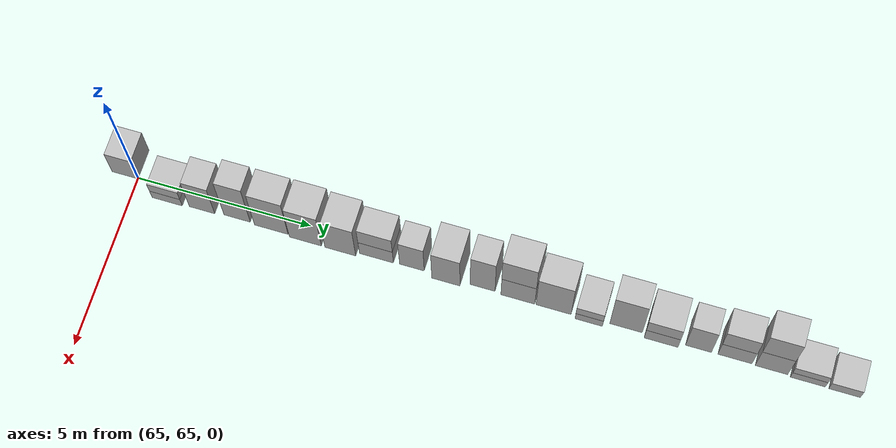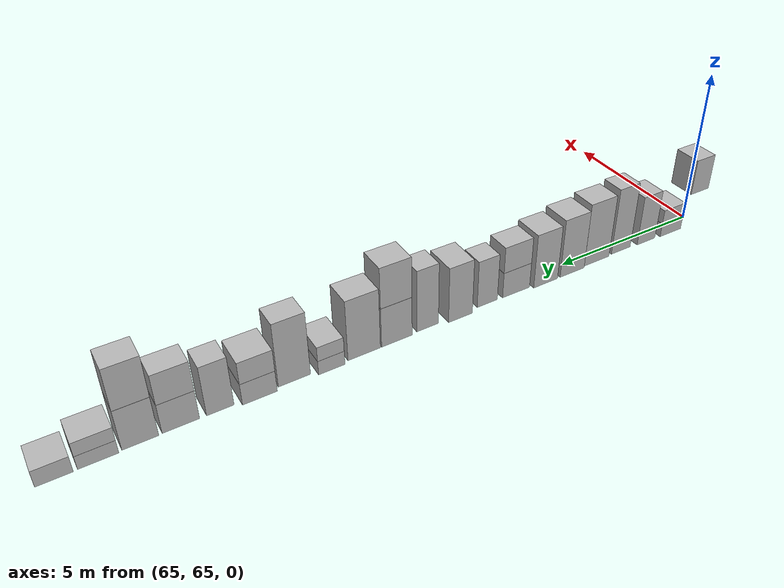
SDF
<sdf version="1.5">
 <world name="default">
  <model name="ground_plane">
   <static>true</static>
   <link name="link">
    <collision name="collision">
     <geometry><plane><normal>0 0 1</normal><size>250 250</size></plane></geometry>
     <surface><friction><ode><mu>1</mu><mu2>1</mu2></ode></friction></surface>
    </collision>
    <visual name="grass">
     <cast_shadows>false</cast_shadows>
     <geometry><mesh><uri>file://grass_plane/meshes/grass_plane.dae</uri></mesh></geometry>
    </visual>
   </link>
  </model>
  <model name="Cardboard_box_top_660">
   <link name="link_0">
    <pose>65 65 1.21451829969 0 0 0</pose>
    <inertial>
     <mass>1</mass>
     <inertia>
      <ixx>0.166667</ixx>
      <ixy>0</ixy>
      <ixz>0</ixz>
      <iyy>0.166667</iyy>
      <iyz>0</iyz>
      <izz>0.166667</izz>
     </inertia>
    </inertial>
    <collision name="collision">
     <geometry>
      <mesh>
       <uri>model://Cardboard_box/meshes/cardboard_box.dae</uri>
       <scale>2.16586801178 1.87002822027 3.03629574922</scale>
      </mesh>
     </geometry>
    </collision>
    <visual name="visual">
     <geometry>
      <mesh>
       <uri>model://Cardboard_box/meshes/cardboard_box.dae</uri>
       <scale>2.16586801178 1.87002822027 3.03629574922</scale>
      </mesh>
     </geometry>
    </visual>
   </link>
   <static>1</static>
  </model>
  <model name="Cardboard_box_661">
   <link name="link_0">
    <pose>65 66 0 0 0 0</pose>
    <inertial>
     <mass>1</mass>
     <inertia>
      <ixx>0.166667</ixx>
      <ixy>0</ixy>
      <ixz>0</ixz>
      <iyy>0.166667</iyy>
      <iyz>0</iyz>
      <izz>0.166667</izz>
     </inertia>
    </inertial>
    <collision name="collision">
     <geometry>
      <mesh>
       <uri>model://Cardboard_box/meshes/cardboard_box.dae</uri>
       <scale>2.2149491193 2.21294872091 1.22089232817</scale>
      </mesh>
     </geometry>
    </collision>
    <visual name="visual">
     <geometry>
      <mesh>
       <uri>model://Cardboard_box/meshes/cardboard_box.dae</uri>
       <scale>2.2149491193 2.21294872091 1.22089232817</scale>
      </mesh>
     </geometry>
    </visual>
   </link>
   <static>1</static>
  </model>
  <model name="Cardboard_box_top_661">
   <link name="link_0">
    <pose>65 66 0.48835693127 0 0 0</pose>
    <inertial>
     <mass>1</mass>
     <inertia>
      <ixx>0.166667</ixx>
      <ixy>0</ixy>
      <ixz>0</ixz>
      <iyy>0.166667</iyy>
      <iyz>0</iyz>
      <izz>0.166667</izz>
     </inertia>
    </inertial>
    <collision name="collision">
     <geometry>
      <mesh>
       <uri>model://Cardboard_box/meshes/cardboard_box.dae</uri>
       <scale>2.2149491193 2.21294872091 1.22089232817</scale>
      </mesh>
     </geometry>
    </collision>
    <visual name="visual">
     <geometry>
      <mesh>
       <uri>model://Cardboard_box/meshes/cardboard_box.dae</uri>
       <scale>2.2149491193 2.21294872091 1.22089232817</scale>
      </mesh>
     </geometry>
    </visual>
   </link>
   <static>1</static>
  </model>
  <model name="Cardboard_box_662">
   <link name="link_0">
    <pose>65 67 0 0 0 0</pose>
    <inertial>
     <mass>1</mass>
     <inertia>
      <ixx>0.166667</ixx>
      <ixy>0</ixy>
      <ixz>0</ixz>
      <iyy>0.166667</iyy>
      <iyz>0</iyz>
      <izz>0.166667</izz>
     </inertia>
    </inertial>
    <collision name="collision">
     <geometry>
      <mesh>
       <uri>model://Cardboard_box/meshes/cardboard_box.dae</uri>
       <scale>2.0227095247 1.8576262159 4.37402921388</scale>
      </mesh>
     </geometry>
    </collision>
    <visual name="visual">
     <geometry>
      <mesh>
       <uri>model://Cardboard_box/meshes/cardboard_box.dae</uri>
       <scale>2.0227095247 1.8576262159 4.37402921388</scale>
      </mesh>
     </geometry>
    </visual>
   </link>
   <static>1</static>
  </model>
  <model name="Cardboard_box_663">
   <link name="link_0">
    <pose>65 68 0 0 0 0</pose>
    <inertial>
     <mass>1</mass>
     <inertia>
      <ixx>0.166667</ixx>
      <ixy>0</ixy>
      <ixz>0</ixz>
      <iyy>0.166667</iyy>
      <iyz>0</iyz>
      <izz>0.166667</izz>
     </inertia>
    </inertial>
    <collision name="collision">
     <geometry>
      <mesh>
       <uri>model://Cardboard_box/meshes/cardboard_box.dae</uri>
       <scale>1.80886179175 1.91253049145 5.82698636049</scale>
      </mesh>
     </geometry>
    </collision>
    <visual name="visual">
     <geometry>
      <mesh>
       <uri>model://Cardboard_box/meshes/cardboard_box.dae</uri>
       <scale>1.80886179175 1.91253049145 5.82698636049</scale>
      </mesh>
     </geometry>
    </visual>
   </link>
   <static>1</static>
  </model>
  <model name="Cardboard_box_664">
   <link name="link_0">
    <pose>65 69 0 0 0 0</pose>
    <inertial>
     <mass>1</mass>
     <inertia>
      <ixx>0.166667</ixx>
      <ixy>0</ixy>
      <ixz>0</ixz>
      <iyy>0.166667</iyy>
      <iyz>0</iyz>
      <izz>0.166667</izz>
     </inertia>
    </inertial>
    <collision name="collision">
     <geometry>
      <mesh>
       <uri>model://Cardboard_box/meshes/cardboard_box.dae</uri>
       <scale>2.01891010451 2.43031293494 5.50015732382</scale>
      </mesh>
     </geometry>
    </collision>
    <visual name="visual">
     <geometry>
      <mesh>
       <uri>model://Cardboard_box/meshes/cardboard_box.dae</uri>
       <scale>2.01891010451 2.43031293494 5.50015732382</scale>
      </mesh>
     </geometry>
    </visual>
   </link>
   <static>1</static>
  </model>
  <model name="Cardboard_box_665">
   <link name="link_0">
    <pose>65 70 0 0 0 0</pose>
    <inertial>
     <mass>1</mass>
     <inertia>
      <ixx>0.166667</ixx>
      <ixy>0</ixy>
      <ixz>0</ixz>
      <iyy>0.166667</iyy>
      <iyz>0</iyz>
      <izz>0.166667</izz>
     </inertia>
    </inertial>
    <collision name="collision">
     <geometry>
      <mesh>
       <uri>model://Cardboard_box/meshes/cardboard_box.dae</uri>
       <scale>2.32692504537 2.30253247782 5.07014167023</scale>
      </mesh>
     </geometry>
    </collision>
    <visual name="visual">
     <geometry>
      <mesh>
       <uri>model://Cardboard_box/meshes/cardboard_box.dae</uri>
       <scale>2.32692504537 2.30253247782 5.07014167023</scale>
      </mesh>
     </geometry>
    </visual>
   </link>
   <static>1</static>
  </model>
  <model name="Cardboard_box_666">
   <link name="link_0">
    <pose>65 71 0 0 0 0</pose>
    <inertial>
     <mass>1</mass>
     <inertia>
      <ixx>0.166667</ixx>
      <ixy>0</ixy>
      <ixz>0</ixz>
      <iyy>0.166667</iyy>
      <iyz>0</iyz>
      <izz>0.166667</izz>
     </inertia>
    </inertial>
    <collision name="collision">
     <geometry>
      <mesh>
       <uri>model://Cardboard_box/meshes/cardboard_box.dae</uri>
       <scale>2.36072452082 2.21266803848 4.67891464336</scale>
      </mesh>
     </geometry>
    </collision>
    <visual name="visual">
     <geometry>
      <mesh>
       <uri>model://Cardboard_box/meshes/cardboard_box.dae</uri>
       <scale>2.36072452082 2.21266803848 4.67891464336</scale>
      </mesh>
     </geometry>
    </visual>
   </link>
   <static>1</static>
  </model>
  <model name="Cardboard_box_667">
   <link name="link_0">
    <pose>65 72 0 0 0 0</pose>
    <inertial>
     <mass>1</mass>
     <inertia>
      <ixx>0.166667</ixx>
      <ixy>0</ixy>
      <ixz>0</ixz>
      <iyy>0.166667</iyy>
      <iyz>0</iyz>
      <izz>0.166667</izz>
     </inertia>
    </inertial>
    <collision name="collision">
     <geometry>
      <mesh>
       <uri>model://Cardboard_box/meshes/cardboard_box.dae</uri>
       <scale>1.86553314338 2.42431612484 2.20107057693</scale>
      </mesh>
     </geometry>
    </collision>
    <visual name="visual">
     <geometry>
      <mesh>
       <uri>model://Cardboard_box/meshes/cardboard_box.dae</uri>
       <scale>1.86553314338 2.42431612484 2.20107057693</scale>
      </mesh>
     </geometry>
    </visual>
   </link>
   <static>1</static>
  </model>
  <model name="Cardboard_box_top_667">
   <link name="link_0">
    <pose>65 72 0.880428230772 0 0 0</pose>
    <inertial>
     <mass>1</mass>
     <inertia>
      <ixx>0.166667</ixx>
      <ixy>0</ixy>
      <ixz>0</ixz>
      <iyy>0.166667</iyy>
      <iyz>0</iyz>
      <izz>0.166667</izz>
     </inertia>
    </inertial>
    <collision name="collision">
     <geometry>
      <mesh>
       <uri>model://Cardboard_box/meshes/cardboard_box.dae</uri>
       <scale>1.86553314338 2.42431612484 2.20107057693</scale>
      </mesh>
     </geometry>
    </collision>
    <visual name="visual">
     <geometry>
      <mesh>
       <uri>model://Cardboard_box/meshes/cardboard_box.dae</uri>
       <scale>1.86553314338 2.42431612484 2.20107057693</scale>
      </mesh>
     </geometry>
    </visual>
   </link>
   <static>1</static>
  </model>
  <model name="Cardboard_box_668">
   <link name="link_0">
    <pose>65 73 0 0 0 0</pose>
    <inertial>
     <mass>1</mass>
     <inertia>
      <ixx>0.166667</ixx>
      <ixy>0</ixy>
      <ixz>0</ixz>
      <iyy>0.166667</iyy>
      <iyz>0</iyz>
      <izz>0.166667</izz>
     </inertia>
    </inertial>
    <collision name="collision">
     <geometry>
      <mesh>
       <uri>model://Cardboard_box/meshes/cardboard_box.dae</uri>
       <scale>1.77099762991 1.75743696538 4.00146928753</scale>
      </mesh>
     </geometry>
    </collision>
    <visual name="visual">
     <geometry>
      <mesh>
       <uri>model://Cardboard_box/meshes/cardboard_box.dae</uri>
       <scale>1.77099762991 1.75743696538 4.00146928753</scale>
      </mesh>
     </geometry>
    </visual>
   </link>
   <static>1</static>
  </model>
  <model name="Cardboard_box_669">
   <link name="link_0">
    <pose>65 74 0 0 0 0</pose>
    <inertial>
     <mass>1</mass>
     <inertia>
      <ixx>0.166667</ixx>
      <ixy>0</ixy>
      <ixz>0</ixz>
      <iyy>0.166667</iyy>
      <iyz>0</iyz>
      <izz>0.166667</izz>
     </inertia>
    </inertial>
    <collision name="collision">
     <geometry>
      <mesh>
       <uri>model://Cardboard_box/meshes/cardboard_box.dae</uri>
       <scale>2.44779650938 2.002752274 4.69136454932</scale>
      </mesh>
     </geometry>
    </collision>
    <visual name="visual">
     <geometry>
      <mesh>
       <uri>model://Cardboard_box/meshes/cardboard_box.dae</uri>
       <scale>2.44779650938 2.002752274 4.69136454932</scale>
      </mesh>
     </geometry>
    </visual>
   </link>
   <static>1</static>
  </model>
  <model name="Cardboard_box_670">
   <link name="link_0">
    <pose>65 75 0 0 0 0</pose>
    <inertial>
     <mass>1</mass>
     <inertia>
      <ixx>0.166667</ixx>
      <ixy>0</ixy>
      <ixz>0</ixz>
      <iyy>0.166667</iyy>
      <iyz>0</iyz>
      <izz>0.166667</izz>
     </inertia>
    </inertial>
    <collision name="collision">
     <geometry>
      <mesh>
       <uri>model://Cardboard_box/meshes/cardboard_box.dae</uri>
       <scale>1.83322106779 1.75370650806 5.21250532628</scale>
      </mesh>
     </geometry>
    </collision>
    <visual name="visual">
     <geometry>
      <mesh>
       <uri>model://Cardboard_box/meshes/cardboard_box.dae</uri>
       <scale>1.83322106779 1.75370650806 5.21250532628</scale>
      </mesh>
     </geometry>
    </visual>
   </link>
   <static>1</static>
  </model>
  <model name="Cardboard_box_671">
   <link name="link_0">
    <pose>65 76 0 0 0 0</pose>
    <inertial>
     <mass>1</mass>
     <inertia>
      <ixx>0.166667</ixx>
      <ixy>0</ixy>
      <ixz>0</ixz>
      <iyy>0.166667</iyy>
      <iyz>0</iyz>
      <izz>0.166667</izz>
     </inertia>
    </inertial>
    <collision name="collision">
     <geometry>
      <mesh>
       <uri>model://Cardboard_box/meshes/cardboard_box.dae</uri>
       <scale>2.05070179391 2.3930214384 3.30598510512</scale>
      </mesh>
     </geometry>
    </collision>
    <visual name="visual">
     <geometry>
      <mesh>
       <uri>model://Cardboard_box/meshes/cardboard_box.dae</uri>
       <scale>2.05070179391 2.3930214384 3.30598510512</scale>
      </mesh>
     </geometry>
    </visual>
   </link>
   <static>1</static>
  </model>
  <model name="Cardboard_box_top_671">
   <link name="link_0">
    <pose>65 76 1.32239404205 0 0 0</pose>
    <inertial>
     <mass>1</mass>
     <inertia>
      <ixx>0.166667</ixx>
      <ixy>0</ixy>
      <ixz>0</ixz>
      <iyy>0.166667</iyy>
      <iyz>0</iyz>
      <izz>0.166667</izz>
     </inertia>
    </inertial>
    <collision name="collision">
     <geometry>
      <mesh>
       <uri>model://Cardboard_box/meshes/cardboard_box.dae</uri>
       <scale>2.05070179391 2.3930214384 3.30598510512</scale>
      </mesh>
     </geometry>
    </collision>
    <visual name="visual">
     <geometry>
      <mesh>
       <uri>model://Cardboard_box/meshes/cardboard_box.dae</uri>
       <scale>2.05070179391 2.3930214384 3.30598510512</scale>
      </mesh>
     </geometry>
    </visual>
   </link>
   <static>1</static>
  </model>
  <model name="Cardboard_box_672">
   <link name="link_0">
    <pose>65 77 0 0 0 0</pose>
    <inertial>
     <mass>1</mass>
     <inertia>
      <ixx>0.166667</ixx>
      <ixy>0</ixy>
      <ixz>0</ixz>
      <iyy>0.166667</iyy>
      <iyz>0</iyz>
      <izz>0.166667</izz>
     </inertia>
    </inertial>
    <collision name="collision">
     <geometry>
      <mesh>
       <uri>model://Cardboard_box/meshes/cardboard_box.dae</uri>
       <scale>2.05914838568 2.45899727796 5.00653307089</scale>
      </mesh>
     </geometry>
    </collision>
    <visual name="visual">
     <geometry>
      <mesh>
       <uri>model://Cardboard_box/meshes/cardboard_box.dae</uri>
       <scale>2.05914838568 2.45899727796 5.00653307089</scale>
      </mesh>
     </geometry>
    </visual>
   </link>
   <static>1</static>
  </model>
  <model name="Cardboard_box_673">
   <link name="link_0">
    <pose>65 78 0 0 0 0</pose>
    <inertial>
     <mass>1</mass>
     <inertia>
      <ixx>0.166667</ixx>
      <ixy>0</ixy>
      <ixz>0</ixz>
      <iyy>0.166667</iyy>
      <iyz>0</iyz>
      <izz>0.166667</izz>
     </inertia>
    </inertial>
    <collision name="collision">
     <geometry>
      <mesh>
       <uri>model://Cardboard_box/meshes/cardboard_box.dae</uri>
       <scale>2.47568899713 1.92030410225 1.15983972098</scale>
      </mesh>
     </geometry>
    </collision>
    <visual name="visual">
     <geometry>
      <mesh>
       <uri>model://Cardboard_box/meshes/cardboard_box.dae</uri>
       <scale>2.47568899713 1.92030410225 1.15983972098</scale>
      </mesh>
     </geometry>
    </visual>
   </link>
   <static>1</static>
  </model>
  <model name="Cardboard_box_top_673">
   <link name="link_0">
    <pose>65 78 0.463935888392 0 0 0</pose>
    <inertial>
     <mass>1</mass>
     <inertia>
      <ixx>0.166667</ixx>
      <ixy>0</ixy>
      <ixz>0</ixz>
      <iyy>0.166667</iyy>
      <iyz>0</iyz>
      <izz>0.166667</izz>
     </inertia>
    </inertial>
    <collision name="collision">
     <geometry>
      <mesh>
       <uri>model://Cardboard_box/meshes/cardboard_box.dae</uri>
       <scale>2.47568899713 1.92030410225 1.15983972098</scale>
      </mesh>
     </geometry>
    </collision>
    <visual name="visual">
     <geometry>
      <mesh>
       <uri>model://Cardboard_box/meshes/cardboard_box.dae</uri>
       <scale>2.47568899713 1.92030410225 1.15983972098</scale>
      </mesh>
     </geometry>
    </visual>
   </link>
   <static>1</static>
  </model>
  <model name="Cardboard_box_674">
   <link name="link_0">
    <pose>65 79 0 0 0 0</pose>
    <inertial>
     <mass>1</mass>
     <inertia>
      <ixx>0.166667</ixx>
      <ixy>0</ixy>
      <ixz>0</ixz>
      <iyy>0.166667</iyy>
      <iyz>0</iyz>
      <izz>0.166667</izz>
     </inertia>
    </inertial>
    <collision name="collision">
     <geometry>
      <mesh>
       <uri>model://Cardboard_box/meshes/cardboard_box.dae</uri>
       <scale>1.80268517431 2.2733041324 5.215599626</scale>
      </mesh>
     </geometry>
    </collision>
    <visual name="visual">
     <geometry>
      <mesh>
       <uri>model://Cardboard_box/meshes/cardboard_box.dae</uri>
       <scale>1.80268517431 2.2733041324 5.215599626</scale>
      </mesh>
     </geometry>
    </visual>
   </link>
   <static>1</static>
  </model>
  <model name="Cardboard_box_675">
   <link name="link_0">
    <pose>65 80 0 0 0 0</pose>
    <inertial>
     <mass>1</mass>
     <inertia>
      <ixx>0.166667</ixx>
      <ixy>0</ixy>
      <ixz>0</ixz>
      <iyy>0.166667</iyy>
      <iyz>0</iyz>
      <izz>0.166667</izz>
     </inertia>
    </inertial>
    <collision name="collision">
     <geometry>
      <mesh>
       <uri>model://Cardboard_box/meshes/cardboard_box.dae</uri>
       <scale>2.42823592727 2.3554364457 1.74615251581</scale>
      </mesh>
     </geometry>
    </collision>
    <visual name="visual">
     <geometry>
      <mesh>
       <uri>model://Cardboard_box/meshes/cardboard_box.dae</uri>
       <scale>2.42823592727 2.3554364457 1.74615251581</scale>
      </mesh>
     </geometry>
    </visual>
   </link>
   <static>1</static>
  </model>
  <model name="Cardboard_box_top_675">
   <link name="link_0">
    <pose>65 80 0.698461006325 0 0 0</pose>
    <inertial>
     <mass>1</mass>
     <inertia>
      <ixx>0.166667</ixx>
      <ixy>0</ixy>
      <ixz>0</ixz>
      <iyy>0.166667</iyy>
      <iyz>0</iyz>
      <izz>0.166667</izz>
     </inertia>
    </inertial>
    <collision name="collision">
     <geometry>
      <mesh>
       <uri>model://Cardboard_box/meshes/cardboard_box.dae</uri>
       <scale>2.42823592727 2.3554364457 1.74615251581</scale>
      </mesh>
     </geometry>
    </collision>
    <visual name="visual">
     <geometry>
      <mesh>
       <uri>model://Cardboard_box/meshes/cardboard_box.dae</uri>
       <scale>2.42823592727 2.3554364457 1.74615251581</scale>
      </mesh>
     </geometry>
    </visual>
   </link>
   <static>1</static>
  </model>
  <model name="Cardboard_box_676">
   <link name="link_0">
    <pose>65 81 0 0 0 0</pose>
    <inertial>
     <mass>1</mass>
     <inertia>
      <ixx>0.166667</ixx>
      <ixy>0</ixy>
      <ixz>0</ixz>
      <iyy>0.166667</iyy>
      <iyz>0</iyz>
      <izz>0.166667</izz>
     </inertia>
    </inertial>
    <collision name="collision">
     <geometry>
      <mesh>
       <uri>model://Cardboard_box/meshes/cardboard_box.dae</uri>
       <scale>1.83665092057 1.79514110471 4.00663149019</scale>
      </mesh>
     </geometry>
    </collision>
    <visual name="visual">
     <geometry>
      <mesh>
       <uri>model://Cardboard_box/meshes/cardboard_box.dae</uri>
       <scale>1.83665092057 1.79514110471 4.00663149019</scale>
      </mesh>
     </geometry>
    </visual>
   </link>
   <static>1</static>
  </model>
  <model name="Cardboard_box_677">
   <link name="link_0">
    <pose>65 82 0 0 0 0</pose>
    <inertial>
     <mass>1</mass>
     <inertia>
      <ixx>0.166667</ixx>
      <ixy>0</ixy>
      <ixz>0</ixz>
      <iyy>0.166667</iyy>
      <iyz>0</iyz>
      <izz>0.166667</izz>
     </inertia>
    </inertial>
    <collision name="collision">
     <geometry>
      <mesh>
       <uri>model://Cardboard_box/meshes/cardboard_box.dae</uri>
       <scale>1.82127323232 2.35545300622 2.3560768068</scale>
      </mesh>
     </geometry>
    </collision>
    <visual name="visual">
     <geometry>
      <mesh>
       <uri>model://Cardboard_box/meshes/cardboard_box.dae</uri>
       <scale>1.82127323232 2.35545300622 2.3560768068</scale>
      </mesh>
     </geometry>
    </visual>
   </link>
   <static>1</static>
  </model>
  <model name="Cardboard_box_top_677">
   <link name="link_0">
    <pose>65 82 0.942430722721 0 0 0</pose>
    <inertial>
     <mass>1</mass>
     <inertia>
      <ixx>0.166667</ixx>
      <ixy>0</ixy>
      <ixz>0</ixz>
      <iyy>0.166667</iyy>
      <iyz>0</iyz>
      <izz>0.166667</izz>
     </inertia>
    </inertial>
    <collision name="collision">
     <geometry>
      <mesh>
       <uri>model://Cardboard_box/meshes/cardboard_box.dae</uri>
       <scale>1.82127323232 2.35545300622 2.3560768068</scale>
      </mesh>
     </geometry>
    </collision>
    <visual name="visual">
     <geometry>
      <mesh>
       <uri>model://Cardboard_box/meshes/cardboard_box.dae</uri>
       <scale>1.82127323232 2.35545300622 2.3560768068</scale>
      </mesh>
     </geometry>
    </visual>
   </link>
   <static>1</static>
  </model>
  <model name="Cardboard_box_678">
   <link name="link_0">
    <pose>65 83 0 0 0 0</pose>
    <inertial>
     <mass>1</mass>
     <inertia>
      <ixx>0.166667</ixx>
      <ixy>0</ixy>
      <ixz>0</ixz>
      <iyy>0.166667</iyy>
      <iyz>0</iyz>
      <izz>0.166667</izz>
     </inertia>
    </inertial>
    <collision name="collision">
     <geometry>
      <mesh>
       <uri>model://Cardboard_box/meshes/cardboard_box.dae</uri>
       <scale>1.92942616749 2.2317579614 3.22065853288</scale>
      </mesh>
     </geometry>
    </collision>
    <visual name="visual">
     <geometry>
      <mesh>
       <uri>model://Cardboard_box/meshes/cardboard_box.dae</uri>
       <scale>1.92942616749 2.2317579614 3.22065853288</scale>
      </mesh>
     </geometry>
    </visual>
   </link>
   <static>1</static>
  </model>
  <model name="Cardboard_box_top_678">
   <link name="link_0">
    <pose>65 83 1.28826341315 0 0 0</pose>
    <inertial>
     <mass>1</mass>
     <inertia>
      <ixx>0.166667</ixx>
      <ixy>0</ixy>
      <ixz>0</ixz>
      <iyy>0.166667</iyy>
      <iyz>0</iyz>
      <izz>0.166667</izz>
     </inertia>
    </inertial>
    <collision name="collision">
     <geometry>
      <mesh>
       <uri>model://Cardboard_box/meshes/cardboard_box.dae</uri>
       <scale>1.92942616749 2.2317579614 3.22065853288</scale>
      </mesh>
     </geometry>
    </collision>
    <visual name="visual">
     <geometry>
      <mesh>
       <uri>model://Cardboard_box/meshes/cardboard_box.dae</uri>
       <scale>1.92942616749 2.2317579614 3.22065853288</scale>
      </mesh>
     </geometry>
    </visual>
   </link>
   <static>1</static>
  </model>
  <model name="Cardboard_box_679">
   <link name="link_0">
    <pose>65 84 0 0 0 0</pose>
    <inertial>
     <mass>1</mass>
     <inertia>
      <ixx>0.166667</ixx>
      <ixy>0</ixy>
      <ixz>0</ixz>
      <iyy>0.166667</iyy>
      <iyz>0</iyz>
      <izz>0.166667</izz>
     </inertia>
    </inertial>
    <collision name="collision">
     <geometry>
      <mesh>
       <uri>model://Cardboard_box/meshes/cardboard_box.dae</uri>
       <scale>2.15799596698 2.39702771141 1.06900762612</scale>
      </mesh>
     </geometry>
    </collision>
    <visual name="visual">
     <geometry>
      <mesh>
       <uri>model://Cardboard_box/meshes/cardboard_box.dae</uri>
       <scale>2.15799596698 2.39702771141 1.06900762612</scale>
      </mesh>
     </geometry>
    </visual>
   </link>
   <static>1</static>
  </model>
  <model name="Cardboard_box_top_679">
   <link name="link_0">
    <pose>65 84 0.427603050448 0 0 0</pose>
    <inertial>
     <mass>1</mass>
     <inertia>
      <ixx>0.166667</ixx>
      <ixy>0</ixy>
      <ixz>0</ixz>
      <iyy>0.166667</iyy>
      <iyz>0</iyz>
      <izz>0.166667</izz>
     </inertia>
    </inertial>
    <collision name="collision">
     <geometry>
      <mesh>
       <uri>model://Cardboard_box/meshes/cardboard_box.dae</uri>
       <scale>2.15799596698 2.39702771141 1.06900762612</scale>
      </mesh>
     </geometry>
    </collision>
    <visual name="visual">
     <geometry>
      <mesh>
       <uri>model://Cardboard_box/meshes/cardboard_box.dae</uri>
       <scale>2.15799596698 2.39702771141 1.06900762612</scale>
      </mesh>
     </geometry>
    </visual>
   </link>
   <static>1</static>
  </model>
  <model name="Cardboard_box_680">
   <link name="link_0">
    <pose>65 85 0 0 0 0</pose>
    <inertial>
     <mass>1</mass>
     <inertia>
      <ixx>0.166667</ixx>
      <ixy>0</ixy>
      <ixz>0</ixz>
      <iyy>0.166667</iyy>
      <iyz>0</iyz>
      <izz>0.166667</izz>
     </inertia>
    </inertial>
    <collision name="collision">
     <geometry>
      <mesh>
       <uri>model://Cardboard_box/meshes/cardboard_box.dae</uri>
       <scale>2.24664343238 2.1493923385 1.28694716685</scale>
      </mesh>
     </geometry>
    </collision>
    <visual name="visual">
     <geometry>
      <mesh>
       <uri>model://Cardboard_box/meshes/cardboard_box.dae</uri>
       <scale>2.24664343238 2.1493923385 1.28694716685</scale>
      </mesh>
     </geometry>
    </visual>
   </link>
   <static>1</static>
  </model>
 </world>
</sdf>
